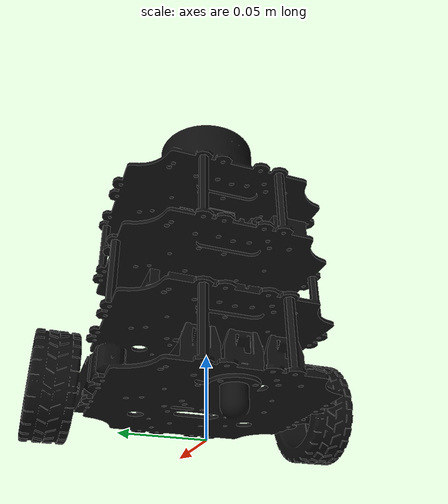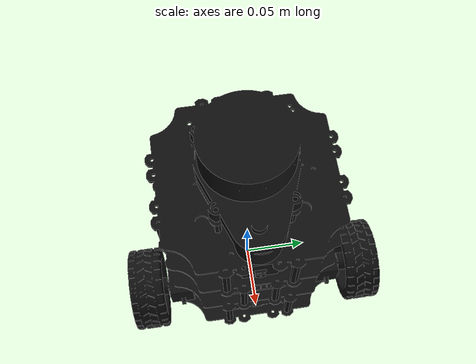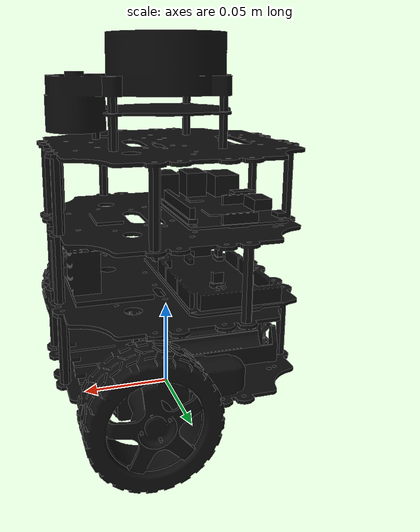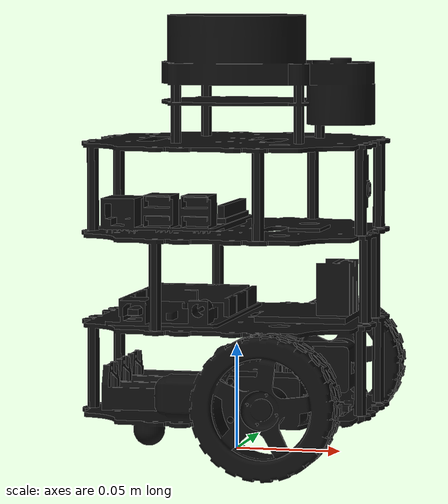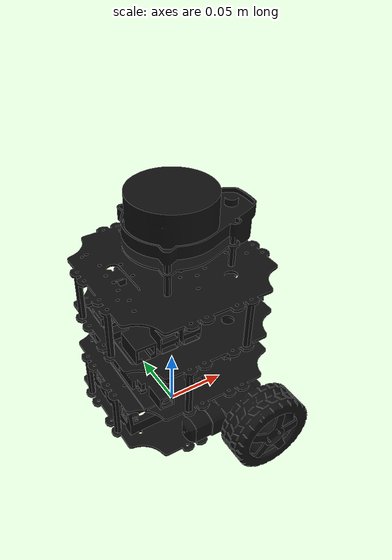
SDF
<?xml version='1.0'?>
<sdf version='1.6'>
  <model name='tor_bot2'>
    <link name='link_1'>
         <visual name='visual'>
        <pose frame=''>0 0 0 0 -0 0</pose>
        <geometry>
          <mesh>
            <uri>model://tortoise_bot2/meshes/tortoise_bot.dae</uri>
            <scale>1 1 1</scale>
          </mesh>
        </geometry>
        <cast_shadows>0</cast_shadows>
        <transparency>0</transparency>
      </visual>

      <collision name='collision'>
        <laser_retro>0</laser_retro>
        <max_contacts>10</max_contacts>
        <pose frame=''>0 0 0 0 -0 0</pose>
        <geometry>
          <mesh>
            <uri>model://tortoise_bot2/meshes/tortoise_bot.stl</uri>
            <scale>1 1 1</scale>
          </mesh>
        </geometry>
     </collision>
    </link>

    <static>1</static>
    <allow_auto_disable>1</allow_auto_disable>
  </model>
</sdf>
